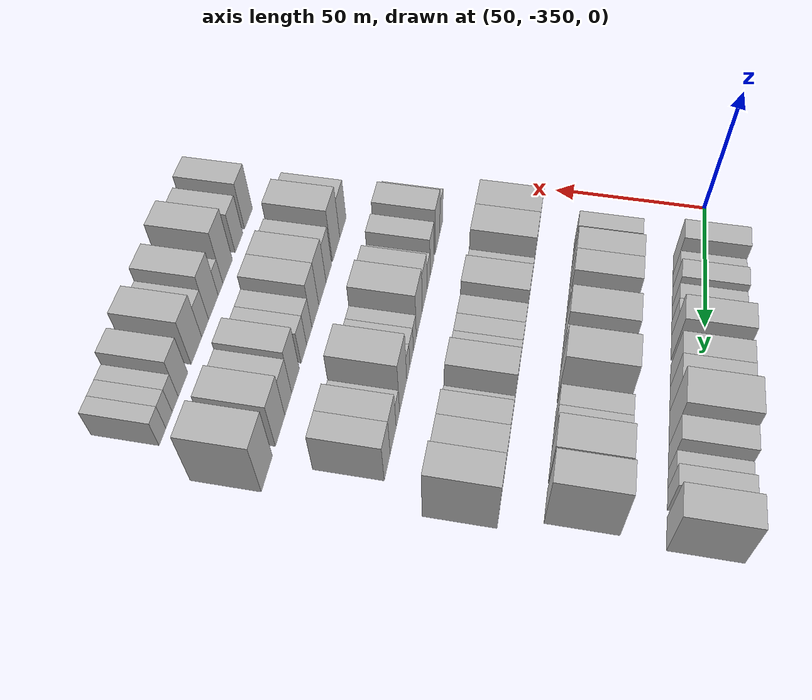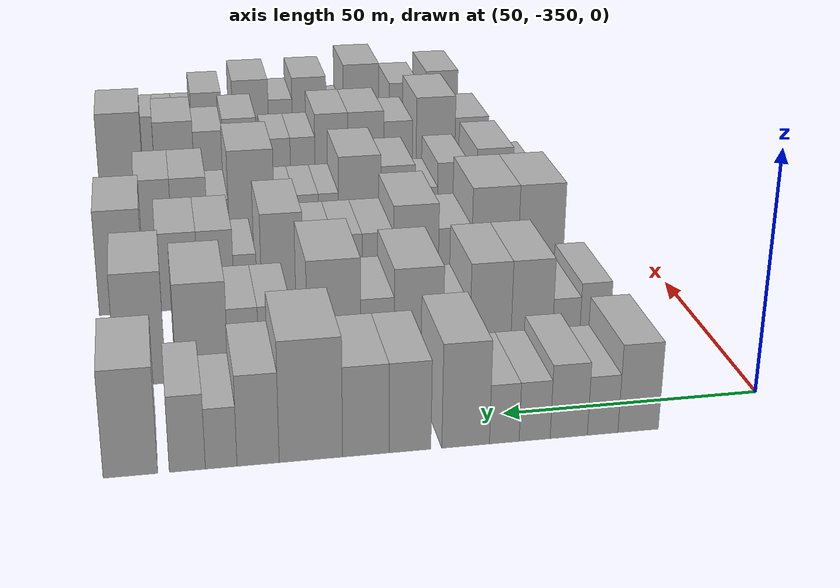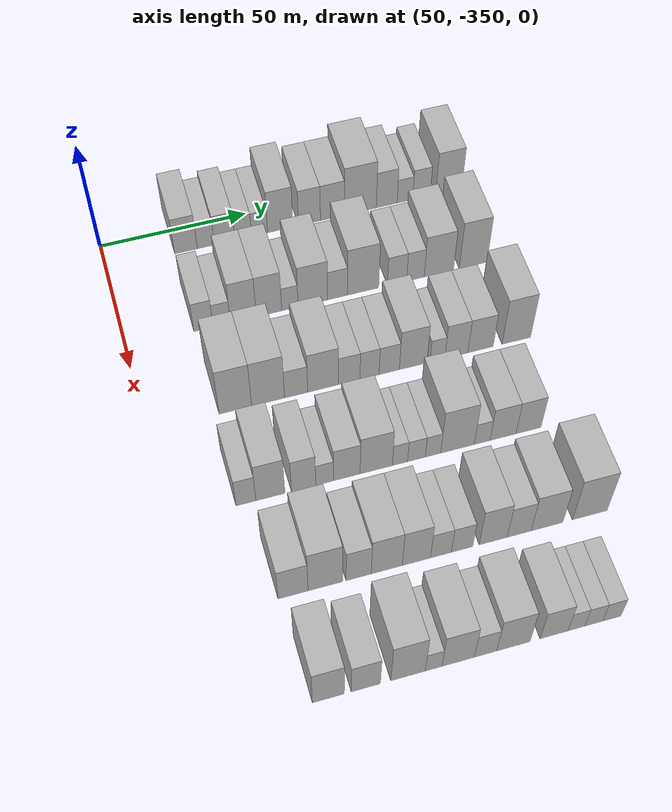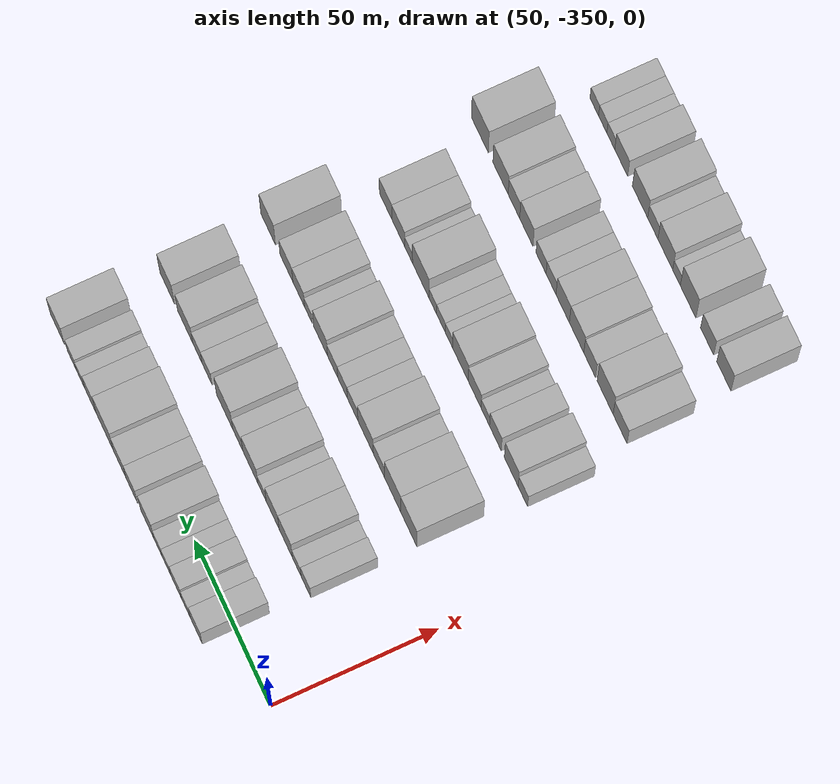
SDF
<sdf version="1.6">
 <world name="default">
  <model name="building_24">
   <static>1</static>
   <pose>50.0000 -322.9932 0 0.000000 0.000000 0.000000</pose>
   <link name="link">
    <pose>0 0 9.00 0 0 0</pose>
    <collision name="collision"><geometry><box><size>20.0000 7.7417 18.0000</size></box></geometry></collision>
    <visual name="visual">
     <cast_shadows>0</cast_shadows>
     <geometry><box><size>20.0000 7.7417 18.0000</size></box></geometry>
     <material>
      <script>
       <uri>model://HANNAS_wall/materials/scripts</uri>
       <uri>model://HANNAS_wall/materials/textures</uri>
       <name>vrc/HANNAS_wall</name>
      </script>
     </material>
    </visual>
   </link>
  </model>
  <model name="building_25">
   <static>1</static>
   <pose>50.0000 -316.2229 0 0.000000 0.000000 0.000000</pose>
   <link name="link">
    <pose>0 0 6.00 0 0 0</pose>
    <collision name="collision"><geometry><box><size>20.0000 5.7988 12.0000</size></box></geometry></collision>
    <visual name="visual">
     <cast_shadows>0</cast_shadows>
     <geometry><box><size>20.0000 5.7988 12.0000</size></box></geometry>
     <material>
      <script>
       <uri>model://HANNAS_wall/materials/scripts</uri>
       <uri>model://HANNAS_wall/materials/textures</uri>
       <name>vrc/HANNAS_wall</name>
      </script>
     </material>
    </visual>
   </link>
  </model>
  <model name="building_26">
   <static>1</static>
   <pose>50.0000 -309.8086 0 0.000000 0.000000 0.000000</pose>
   <link name="link">
    <pose>0 0 7.50 0 0 0</pose>
    <collision name="collision"><geometry><box><size>20.0000 7.0299 15.0000</size></box></geometry></collision>
    <visual name="visual">
     <cast_shadows>0</cast_shadows>
     <geometry><box><size>20.0000 7.0299 15.0000</size></box></geometry>
     <material>
      <script>
       <uri>model://HANNAS_wall/materials/scripts</uri>
       <uri>model://HANNAS_wall/materials/textures</uri>
       <name>vrc/HANNAS_wall</name>
      </script>
     </material>
    </visual>
   </link>
  </model>
  <model name="building_27">
   <static>1</static>
   <pose>50.0000 -303.3903 0 0.000000 0.000000 0.000000</pose>
   <link name="link">
    <pose>0 0 6.00 0 0 0</pose>
    <collision name="collision"><geometry><box><size>20.0000 5.8066 12.0000</size></box></geometry></collision>
    <visual name="visual">
     <cast_shadows>0</cast_shadows>
     <geometry><box><size>20.0000 5.8066 12.0000</size></box></geometry>
     <material>
      <script>
       <uri>model://HANNAS_wall/materials/scripts</uri>
       <uri>model://HANNAS_wall/materials/textures</uri>
       <name>vrc/HANNAS_wall</name>
      </script>
     </material>
    </visual>
   </link>
  </model>
  <model name="building_28">
   <static>1</static>
   <pose>50.0000 -297.7260 0 0.000000 0.000000 0.000000</pose>
   <link name="link">
    <pose>0 0 6.00 0 0 0</pose>
    <collision name="collision"><geometry><box><size>20.0000 5.5220 12.0000</size></box></geometry></collision>
    <visual name="visual">
     <cast_shadows>0</cast_shadows>
     <geometry><box><size>20.0000 5.5220 12.0000</size></box></geometry>
     <material>
      <script>
       <uri>model://HANNAS_wall/materials/scripts</uri>
       <uri>model://HANNAS_wall/materials/textures</uri>
       <name>vrc/HANNAS_wall</name>
      </script>
     </material>
    </visual>
   </link>
  </model>
  <model name="building_29">
   <static>1</static>
   <pose>50.0000 -290.5696 0 0.000000 0.000000 0.000000</pose>
   <link name="link">
    <pose>0 0 10.50 0 0 0</pose>
    <collision name="collision"><geometry><box><size>20.0000 8.7908 21.0000</size></box></geometry></collision>
    <visual name="visual">
     <cast_shadows>0</cast_shadows>
     <geometry><box><size>20.0000 8.7908 21.0000</size></box></geometry>
     <material>
      <script>
       <uri>model://HANNAS_wall/materials/scripts</uri>
       <uri>model://HANNAS_wall/materials/textures</uri>
       <name>vrc/HANNAS_wall</name>
      </script>
     </material>
    </visual>
   </link>
  </model>
  <model name="building_30">
   <static>1</static>
   <pose>50.0000 -280.3609 0 0.000000 0.000000 0.000000</pose>
   <link name="link">
    <pose>0 0 9.00 0 0 0</pose>
    <collision name="collision"><geometry><box><size>20.0000 7.6265 18.0000</size></box></geometry></collision>
    <visual name="visual">
     <cast_shadows>0</cast_shadows>
     <geometry><box><size>20.0000 7.6265 18.0000</size></box></geometry>
     <material>
      <script>
       <uri>model://HANNAS_wall/materials/scripts</uri>
       <uri>model://HANNAS_wall/materials/textures</uri>
       <name>vrc/HANNAS_wall</name>
      </script>
     </material>
    </visual>
   </link>
  </model>
  <model name="building_31">
   <static>1</static>
   <pose>50.0000 -272.3562 0 0.000000 0.000000 0.000000</pose>
   <link name="link">
    <pose>0 0 9.00 0 0 0</pose>
    <collision name="collision"><geometry><box><size>20.0000 8.3829 18.0000</size></box></geometry></collision>
    <visual name="visual">
     <cast_shadows>0</cast_shadows>
     <geometry><box><size>20.0000 8.3829 18.0000</size></box></geometry>
     <material>
      <script>
       <uri>model://HANNAS_wall/materials/scripts</uri>
       <uri>model://HANNAS_wall/materials/textures</uri>
       <name>vrc/HANNAS_wall</name>
      </script>
     </material>
    </visual>
   </link>
  </model>
  <model name="building_32">
   <static>1</static>
   <pose>50.0000 -262.5028 0 0.000000 0.000000 0.000000</pose>
   <link name="link">
    <pose>0 0 12.00 0 0 0</pose>
    <collision name="collision"><geometry><box><size>20.0000 11.3239 24.0000</size></box></geometry></collision>
    <visual name="visual">
     <cast_shadows>0</cast_shadows>
     <geometry><box><size>20.0000 11.3239 24.0000</size></box></geometry>
     <material>
      <script>
       <uri>model://HANNAS_wall/materials/scripts</uri>
       <uri>model://HANNAS_wall/materials/textures</uri>
       <name>vrc/HANNAS_wall</name>
      </script>
     </material>
    </visual>
   </link>
  </model>
  <model name="building_33">
   <static>1</static>
   <pose>50.0000 -253.1167 0 0.000000 0.000000 0.000000</pose>
   <link name="link">
    <pose>0 0 9.00 0 0 0</pose>
    <collision name="collision"><geometry><box><size>20.0000 7.4485 18.0000</size></box></geometry></collision>
    <visual name="visual">
     <cast_shadows>0</cast_shadows>
     <geometry><box><size>20.0000 7.4485 18.0000</size></box></geometry>
     <material>
      <script>
       <uri>model://HANNAS_wall/materials/scripts</uri>
       <uri>model://HANNAS_wall/materials/textures</uri>
       <name>vrc/HANNAS_wall</name>
      </script>
     </material>
    </visual>
   </link>
  </model>
  <model name="building_34">
   <static>1</static>
   <pose>50.0000 -246.6153 0 0.000000 0.000000 0.000000</pose>
   <link name="link">
    <pose>0 0 6.00 0 0 0</pose>
    <collision name="collision"><geometry><box><size>20.0000 5.5543 12.0000</size></box></geometry></collision>
    <visual name="visual">
     <cast_shadows>0</cast_shadows>
     <geometry><box><size>20.0000 5.5543 12.0000</size></box></geometry>
     <material>
      <script>
       <uri>model://HANNAS_wall/materials/scripts</uri>
       <uri>model://HANNAS_wall/materials/textures</uri>
       <name>vrc/HANNAS_wall</name>
      </script>
     </material>
    </visual>
   </link>
  </model>
  <model name="building_35">
   <static>1</static>
   <pose>50.0000 -240.7044 0 0.000000 0.000000 0.000000</pose>
   <link name="link">
    <pose>0 0 7.50 0 0 0</pose>
    <collision name="collision"><geometry><box><size>20.0000 6.2673 15.0000</size></box></geometry></collision>
    <visual name="visual">
     <cast_shadows>0</cast_shadows>
     <geometry><box><size>20.0000 6.2673 15.0000</size></box></geometry>
     <material>
      <script>
       <uri>model://HANNAS_wall/materials/scripts</uri>
       <uri>model://HANNAS_wall/materials/textures</uri>
       <name>vrc/HANNAS_wall</name>
      </script>
     </material>
    </visual>
   </link>
  </model>
  <model name="building_36">
   <static>1</static>
   <pose>50.0000 -230.8726 0 0.000000 0.000000 0.000000</pose>
   <link name="link">
    <pose>0 0 10.50 0 0 0</pose>
    <collision name="collision"><geometry><box><size>20.0000 9.3964 21.0000</size></box></geometry></collision>
    <visual name="visual">
     <cast_shadows>0</cast_shadows>
     <geometry><box><size>20.0000 9.3964 21.0000</size></box></geometry>
     <material>
      <script>
       <uri>model://HANNAS_wall/materials/scripts</uri>
       <uri>model://HANNAS_wall/materials/textures</uri>
       <name>vrc/HANNAS_wall</name>
      </script>
     </material>
    </visual>
   </link>
  </model>
  <model name="building_145">
   <static>1</static>
   <pose>82.0000 -324.4980 0 0.000000 0.000000 0.000000</pose>
   <link name="link">
    <pose>0 0 7.50 0 0 0</pose>
    <collision name="collision"><geometry><box><size>20.0000 6.3324 15.0000</size></box></geometry></collision>
    <visual name="visual">
     <cast_shadows>0</cast_shadows>
     <geometry><box><size>20.0000 6.3324 15.0000</size></box></geometry>
     <material>
      <script>
       <uri>model://HANNAS_wall/materials/scripts</uri>
       <uri>model://HANNAS_wall/materials/textures</uri>
       <name>vrc/HANNAS_wall</name>
      </script>
     </material>
    </visual>
   </link>
  </model>
  <model name="building_146">
   <static>1</static>
   <pose>82.0000 -318.4754 0 0.000000 0.000000 0.000000</pose>
   <link name="link">
    <pose>0 0 6.00 0 0 0</pose>
    <collision name="collision"><geometry><box><size>20.0000 5.7127 12.0000</size></box></geometry></collision>
    <visual name="visual">
     <cast_shadows>0</cast_shadows>
     <geometry><box><size>20.0000 5.7127 12.0000</size></box></geometry>
     <material>
      <script>
       <uri>model://HANNAS_wall/materials/scripts</uri>
       <uri>model://HANNAS_wall/materials/textures</uri>
       <name>vrc/HANNAS_wall</name>
      </script>
     </material>
    </visual>
   </link>
  </model>
  <model name="building_147">
   <static>1</static>
   <pose>82.0000 -311.3048 0 0.000000 0.000000 0.000000</pose>
   <link name="link">
    <pose>0 0 10.50 0 0 0</pose>
    <collision name="collision"><geometry><box><size>20.0000 8.6284 21.0000</size></box></geometry></collision>
    <visual name="visual">
     <cast_shadows>0</cast_shadows>
     <geometry><box><size>20.0000 8.6284 21.0000</size></box></geometry>
     <material>
      <script>
       <uri>model://HANNAS_wall/materials/scripts</uri>
       <uri>model://HANNAS_wall/materials/textures</uri>
       <name>vrc/HANNAS_wall</name>
      </script>
     </material>
    </visual>
   </link>
  </model>
  <model name="building_148">
   <static>1</static>
   <pose>82.0000 -302.7556 0 0.000000 0.000000 0.000000</pose>
   <link name="link">
    <pose>0 0 10.50 0 0 0</pose>
    <collision name="collision"><geometry><box><size>20.0000 8.4700 21.0000</size></box></geometry></collision>
    <visual name="visual">
     <cast_shadows>0</cast_shadows>
     <geometry><box><size>20.0000 8.4700 21.0000</size></box></geometry>
     <material>
      <script>
       <uri>model://HANNAS_wall/materials/scripts</uri>
       <uri>model://HANNAS_wall/materials/textures</uri>
       <name>vrc/HANNAS_wall</name>
      </script>
     </material>
    </visual>
   </link>
  </model>
  <model name="building_149">
   <static>1</static>
   <pose>82.0000 -295.7956 0 0.000000 0.000000 0.000000</pose>
   <link name="link">
    <pose>0 0 6.00 0 0 0</pose>
    <collision name="collision"><geometry><box><size>20.0000 5.4501 12.0000</size></box></geometry></collision>
    <visual name="visual">
     <cast_shadows>0</cast_shadows>
     <geometry><box><size>20.0000 5.4501 12.0000</size></box></geometry>
     <material>
      <script>
       <uri>model://HANNAS_wall/materials/scripts</uri>
       <uri>model://HANNAS_wall/materials/textures</uri>
       <name>vrc/HANNAS_wall</name>
      </script>
     </material>
    </visual>
   </link>
  </model>
  <model name="building_150">
   <static>1</static>
   <pose>82.0000 -288.0998 0 0.000000 0.000000 0.000000</pose>
   <link name="link">
    <pose>0 0 10.50 0 0 0</pose>
    <collision name="collision"><geometry><box><size>20.0000 9.9416 21.0000</size></box></geometry></collision>
    <visual name="visual">
     <cast_shadows>0</cast_shadows>
     <geometry><box><size>20.0000 9.9416 21.0000</size></box></geometry>
     <material>
      <script>
       <uri>model://HANNAS_wall/materials/scripts</uri>
       <uri>model://HANNAS_wall/materials/textures</uri>
       <name>vrc/HANNAS_wall</name>
      </script>
     </material>
    </visual>
   </link>
  </model>
  <model name="building_151">
   <static>1</static>
   <pose>82.0000 -279.7803 0 0.000000 0.000000 0.000000</pose>
   <link name="link">
    <pose>0 0 7.50 0 0 0</pose>
    <collision name="collision"><geometry><box><size>20.0000 6.6973 15.0000</size></box></geometry></collision>
    <visual name="visual">
     <cast_shadows>0</cast_shadows>
     <geometry><box><size>20.0000 6.6973 15.0000</size></box></geometry>
     <material>
      <script>
       <uri>model://HANNAS_wall/materials/scripts</uri>
       <uri>model://HANNAS_wall/materials/textures</uri>
       <name>vrc/HANNAS_wall</name>
      </script>
     </material>
    </visual>
   </link>
  </model>
  <model name="building_152">
   <static>1</static>
   <pose>82.0000 -271.0943 0 0.000000 0.000000 0.000000</pose>
   <link name="link">
    <pose>0 0 12.00 0 0 0</pose>
    <collision name="collision"><geometry><box><size>20.0000 10.6749 24.0000</size></box></geometry></collision>
    <visual name="visual">
     <cast_shadows>0</cast_shadows>
     <geometry><box><size>20.0000 10.6749 24.0000</size></box></geometry>
     <material>
      <script>
       <uri>model://HANNAS_wall/materials/scripts</uri>
       <uri>model://HANNAS_wall/materials/textures</uri>
       <name>vrc/HANNAS_wall</name>
      </script>
     </material>
    </visual>
   </link>
  </model>
  <model name="building_153">
   <static>1</static>
   <pose>82.0000 -259.4603 0 0.000000 0.000000 0.000000</pose>
   <link name="link">
    <pose>0 0 7.50 0 0 0</pose>
    <collision name="collision"><geometry><box><size>20.0000 6.5931 15.0000</size></box></geometry></collision>
    <visual name="visual">
     <cast_shadows>0</cast_shadows>
     <geometry><box><size>20.0000 6.5931 15.0000</size></box></geometry>
     <material>
      <script>
       <uri>model://HANNAS_wall/materials/scripts</uri>
       <uri>model://HANNAS_wall/materials/textures</uri>
       <name>vrc/HANNAS_wall</name>
      </script>
     </material>
    </visual>
   </link>
  </model>
  <model name="building_154">
   <static>1</static>
   <pose>82.0000 -253.1320 0 0.000000 0.000000 0.000000</pose>
   <link name="link">
    <pose>0 0 7.50 0 0 0</pose>
    <collision name="collision"><geometry><box><size>20.0000 6.0636 15.0000</size></box></geometry></collision>
    <visual name="visual">
     <cast_shadows>0</cast_shadows>
     <geometry><box><size>20.0000 6.0636 15.0000</size></box></geometry>
     <material>
      <script>
       <uri>model://HANNAS_wall/materials/scripts</uri>
       <uri>model://HANNAS_wall/materials/textures</uri>
       <name>vrc/HANNAS_wall</name>
      </script>
     </material>
    </visual>
   </link>
  </model>
  <model name="building_155">
   <static>1</static>
   <pose>82.0000 -245.0280 0 0.000000 0.000000 0.000000</pose>
   <link name="link">
    <pose>0 0 10.50 0 0 0</pose>
    <collision name="collision"><geometry><box><size>20.0000 10.1445 21.0000</size></box></geometry></collision>
    <visual name="visual">
     <cast_shadows>0</cast_shadows>
     <geometry><box><size>20.0000 10.1445 21.0000</size></box></geometry>
     <material>
      <script>
       <uri>model://HANNAS_wall/materials/scripts</uri>
       <uri>model://HANNAS_wall/materials/textures</uri>
       <name>vrc/HANNAS_wall</name>
      </script>
     </material>
    </visual>
   </link>
  </model>
  <model name="building_156">
   <static>1</static>
   <pose>82.0000 -233.1219 0 0.000000 0.000000 0.000000</pose>
   <link name="link">
    <pose>0 0 12.00 0 0 0</pose>
    <collision name="collision"><geometry><box><size>20.0000 9.6677 24.0000</size></box></geometry></collision>
    <visual name="visual">
     <cast_shadows>0</cast_shadows>
     <geometry><box><size>20.0000 9.6677 24.0000</size></box></geometry>
     <material>
      <script>
       <uri>model://HANNAS_wall/materials/scripts</uri>
       <uri>model://HANNAS_wall/materials/textures</uri>
       <name>vrc/HANNAS_wall</name>
      </script>
     </material>
    </visual>
   </link>
  </model>
  <model name="building_269">
   <static>1</static>
   <pose>114.0000 -321.8526 0 0.000000 0.000000 0.000000</pose>
   <link name="link">
    <pose>0 0 12.00 0 0 0</pose>
    <collision name="collision"><geometry><box><size>20.0000 10.3805 24.0000</size></box></geometry></collision>
    <visual name="visual">
     <cast_shadows>0</cast_shadows>
     <geometry><box><size>20.0000 10.3805 24.0000</size></box></geometry>
     <material>
      <script>
       <uri>model://HANNAS_wall/materials/scripts</uri>
       <uri>model://HANNAS_wall/materials/textures</uri>
       <name>vrc/HANNAS_wall</name>
      </script>
     </material>
    </visual>
   </link>
  </model>
  <model name="building_270">
   <static>1</static>
   <pose>114.0000 -311.3780 0 0.000000 0.000000 0.000000</pose>
   <link name="link">
    <pose>0 0 12.00 0 0 0</pose>
    <collision name="collision"><geometry><box><size>20.0000 10.5687 24.0000</size></box></geometry></collision>
    <visual name="visual">
     <cast_shadows>0</cast_shadows>
     <geometry><box><size>20.0000 10.5687 24.0000</size></box></geometry>
     <material>
      <script>
       <uri>model://HANNAS_wall/materials/scripts</uri>
       <uri>model://HANNAS_wall/materials/textures</uri>
       <name>vrc/HANNAS_wall</name>
      </script>
     </material>
    </visual>
   </link>
  </model>
  <model name="building_271">
   <static>1</static>
   <pose>114.0000 -302.3711 0 0.000000 0.000000 0.000000</pose>
   <link name="link">
    <pose>0 0 7.50 0 0 0</pose>
    <collision name="collision"><geometry><box><size>20.0000 7.4452 15.0000</size></box></geometry></collision>
    <visual name="visual">
     <cast_shadows>0</cast_shadows>
     <geometry><box><size>20.0000 7.4452 15.0000</size></box></geometry>
     <material>
      <script>
       <uri>model://HANNAS_wall/materials/scripts</uri>
       <uri>model://HANNAS_wall/materials/textures</uri>
       <name>vrc/HANNAS_wall</name>
      </script>
     </material>
    </visual>
   </link>
  </model>
  <model name="building_272">
   <static>1</static>
   <pose>114.0000 -293.6309 0 0.000000 0.000000 0.000000</pose>
   <link name="link">
    <pose>0 0 10.50 0 0 0</pose>
    <collision name="collision"><geometry><box><size>20.0000 10.0352 21.0000</size></box></geometry></collision>
    <visual name="visual">
     <cast_shadows>0</cast_shadows>
     <geometry><box><size>20.0000 10.0352 21.0000</size></box></geometry>
     <material>
      <script>
       <uri>model://HANNAS_wall/materials/scripts</uri>
       <uri>model://HANNAS_wall/materials/textures</uri>
       <name>vrc/HANNAS_wall</name>
      </script>
     </material>
    </visual>
   </link>
  </model>
  <model name="building_273">
   <static>1</static>
   <pose>114.0000 -285.1408 0 0.000000 0.000000 0.000000</pose>
   <link name="link">
    <pose>0 0 7.50 0 0 0</pose>
    <collision name="collision"><geometry><box><size>20.0000 6.9450 15.0000</size></box></geometry></collision>
    <visual name="visual">
     <cast_shadows>0</cast_shadows>
     <geometry><box><size>20.0000 6.9450 15.0000</size></box></geometry>
     <material>
      <script>
       <uri>model://HANNAS_wall/materials/scripts</uri>
       <uri>model://HANNAS_wall/materials/textures</uri>
       <name>vrc/HANNAS_wall</name>
      </script>
     </material>
    </visual>
   </link>
  </model>
  <model name="building_274">
   <static>1</static>
   <pose>114.0000 -278.5317 0 0.000000 0.000000 0.000000</pose>
   <link name="link">
    <pose>0 0 7.50 0 0 0</pose>
    <collision name="collision"><geometry><box><size>20.0000 6.2732 15.0000</size></box></geometry></collision>
    <visual name="visual">
     <cast_shadows>0</cast_shadows>
     <geometry><box><size>20.0000 6.2732 15.0000</size></box></geometry>
     <material>
      <script>
       <uri>model://HANNAS_wall/materials/scripts</uri>
       <uri>model://HANNAS_wall/materials/textures</uri>
       <name>vrc/HANNAS_wall</name>
      </script>
     </material>
    </visual>
   </link>
  </model>
  <model name="building_275">
   <static>1</static>
   <pose>114.0000 -272.0496 0 0.000000 0.000000 0.000000</pose>
   <link name="link">
    <pose>0 0 7.50 0 0 0</pose>
    <collision name="collision"><geometry><box><size>20.0000 6.6910 15.0000</size></box></geometry></collision>
    <visual name="visual">
     <cast_shadows>0</cast_shadows>
     <geometry><box><size>20.0000 6.6910 15.0000</size></box></geometry>
     <material>
      <script>
       <uri>model://HANNAS_wall/materials/scripts</uri>
       <uri>model://HANNAS_wall/materials/textures</uri>
       <name>vrc/HANNAS_wall</name>
      </script>
     </material>
    </visual>
   </link>
  </model>
  <model name="building_276">
   <static>1</static>
   <pose>114.0000 -264.1493 0 0.000000 0.000000 0.000000</pose>
   <link name="link">
    <pose>0 0 10.50 0 0 0</pose>
    <collision name="collision"><geometry><box><size>20.0000 9.1096 21.0000</size></box></geometry></collision>
    <visual name="visual">
     <cast_shadows>0</cast_shadows>
     <geometry><box><size>20.0000 9.1096 21.0000</size></box></geometry>
     <material>
      <script>
       <uri>model://HANNAS_wall/materials/scripts</uri>
       <uri>model://HANNAS_wall/materials/textures</uri>
       <name>vrc/HANNAS_wall</name>
      </script>
     </material>
    </visual>
   </link>
  </model>
  <model name="building_277">
   <static>1</static>
   <pose>114.0000 -256.1129 0 0.000000 0.000000 0.000000</pose>
   <link name="link">
    <pose>0 0 6.00 0 0 0</pose>
    <collision name="collision"><geometry><box><size>20.0000 4.9632 12.0000</size></box></geometry></collision>
    <visual name="visual">
     <cast_shadows>0</cast_shadows>
     <geometry><box><size>20.0000 4.9632 12.0000</size></box></geometry>
     <material>
      <script>
       <uri>model://HANNAS_wall/materials/scripts</uri>
       <uri>model://HANNAS_wall/materials/textures</uri>
       <name>vrc/HANNAS_wall</name>
      </script>
     </material>
    </visual>
   </link>
  </model>
  <model name="building_278">
   <static>1</static>
   <pose>114.0000 -249.7897 0 0.000000 0.000000 0.000000</pose>
   <link name="link">
    <pose>0 0 9.00 0 0 0</pose>
    <collision name="collision"><geometry><box><size>20.0000 7.6833 18.0000</size></box></geometry></collision>
    <visual name="visual">
     <cast_shadows>0</cast_shadows>
     <geometry><box><size>20.0000 7.6833 18.0000</size></box></geometry>
     <material>
      <script>
       <uri>model://HANNAS_wall/materials/scripts</uri>
       <uri>model://HANNAS_wall/materials/textures</uri>
       <name>vrc/HANNAS_wall</name>
      </script>
     </material>
    </visual>
   </link>
  </model>
  <model name="building_279">
   <static>1</static>
   <pose>114.0000 -241.6819 0 0.000000 0.000000 0.000000</pose>
   <link name="link">
    <pose>0 0 9.00 0 0 0</pose>
    <collision name="collision"><geometry><box><size>20.0000 8.5323 18.0000</size></box></geometry></collision>
    <visual name="visual">
     <cast_shadows>0</cast_shadows>
     <geometry><box><size>20.0000 8.5323 18.0000</size></box></geometry>
     <material>
      <script>
       <uri>model://HANNAS_wall/materials/scripts</uri>
       <uri>model://HANNAS_wall/materials/textures</uri>
       <name>vrc/HANNAS_wall</name>
      </script>
     </material>
    </visual>
   </link>
  </model>
  <model name="building_280">
   <static>1</static>
   <pose>114.0000 -229.5955 0 0.000000 0.000000 0.000000</pose>
   <link name="link">
    <pose>0 0 12.00 0 0 0</pose>
    <collision name="collision"><geometry><box><size>20.0000 9.6406 24.0000</size></box></geometry></collision>
    <visual name="visual">
     <cast_shadows>0</cast_shadows>
     <geometry><box><size>20.0000 9.6406 24.0000</size></box></geometry>
     <material>
      <script>
       <uri>model://HANNAS_wall/materials/scripts</uri>
       <uri>model://HANNAS_wall/materials/textures</uri>
       <name>vrc/HANNAS_wall</name>
      </script>
     </material>
    </visual>
   </link>
  </model>
  <model name="building_388">
   <static>1</static>
   <pose>146.0000 -326.5273 0 0.000000 0.000000 0.000000</pose>
   <link name="link">
    <pose>0 0 7.50 0 0 0</pose>
    <collision name="collision"><geometry><box><size>20.0000 6.0870 15.0000</size></box></geometry></collision>
    <visual name="visual">
     <cast_shadows>0</cast_shadows>
     <geometry><box><size>20.0000 6.0870 15.0000</size></box></geometry>
     <material>
      <script>
       <uri>model://HANNAS_wall/materials/scripts</uri>
       <uri>model://HANNAS_wall/materials/textures</uri>
       <name>vrc/HANNAS_wall</name>
      </script>
     </material>
    </visual>
   </link>
  </model>
  <model name="building_389">
   <static>1</static>
   <pose>146.0000 -319.0149 0 0.000000 0.000000 0.000000</pose>
   <link name="link">
    <pose>0 0 10.50 0 0 0</pose>
    <collision name="collision"><geometry><box><size>20.0000 8.9378 21.0000</size></box></geometry></collision>
    <visual name="visual">
     <cast_shadows>0</cast_shadows>
     <geometry><box><size>20.0000 8.9378 21.0000</size></box></geometry>
     <material>
      <script>
       <uri>model://HANNAS_wall/materials/scripts</uri>
       <uri>model://HANNAS_wall/materials/textures</uri>
       <name>vrc/HANNAS_wall</name>
      </script>
     </material>
    </visual>
   </link>
  </model>
  <model name="building_390">
   <static>1</static>
   <pose>146.0000 -308.7647 0 0.000000 0.000000 0.000000</pose>
   <link name="link">
    <pose>0 0 9.00 0 0 0</pose>
    <collision name="collision"><geometry><box><size>20.0000 7.5625 18.0000</size></box></geometry></collision>
    <visual name="visual">
     <cast_shadows>0</cast_shadows>
     <geometry><box><size>20.0000 7.5625 18.0000</size></box></geometry>
     <material>
      <script>
       <uri>model://HANNAS_wall/materials/scripts</uri>
       <uri>model://HANNAS_wall/materials/textures</uri>
       <name>vrc/HANNAS_wall</name>
      </script>
     </material>
    </visual>
   </link>
  </model>
  <model name="building_391">
   <static>1</static>
   <pose>146.0000 -302.2310 0 0.000000 0.000000 0.000000</pose>
   <link name="link">
    <pose>0 0 6.00 0 0 0</pose>
    <collision name="collision"><geometry><box><size>20.0000 5.5048 12.0000</size></box></geometry></collision>
    <visual name="visual">
     <cast_shadows>0</cast_shadows>
     <geometry><box><size>20.0000 5.5048 12.0000</size></box></geometry>
     <material>
      <script>
       <uri>model://HANNAS_wall/materials/scripts</uri>
       <uri>model://HANNAS_wall/materials/textures</uri>
       <name>vrc/HANNAS_wall</name>
      </script>
     </material>
    </visual>
   </link>
  </model>
  <model name="building_392">
   <static>1</static>
   <pose>146.0000 -295.3212 0 0.000000 0.000000 0.000000</pose>
   <link name="link">
    <pose>0 0 9.00 0 0 0</pose>
    <collision name="collision"><geometry><box><size>20.0000 8.3147 18.0000</size></box></geometry></collision>
    <visual name="visual">
     <cast_shadows>0</cast_shadows>
     <geometry><box><size>20.0000 8.3147 18.0000</size></box></geometry>
     <material>
      <script>
       <uri>model://HANNAS_wall/materials/scripts</uri>
       <uri>model://HANNAS_wall/materials/textures</uri>
       <name>vrc/HANNAS_wall</name>
      </script>
     </material>
    </visual>
   </link>
  </model>
  <model name="building_393">
   <static>1</static>
   <pose>146.0000 -286.0774 0 0.000000 0.000000 0.000000</pose>
   <link name="link">
    <pose>0 0 10.50 0 0 0</pose>
    <collision name="collision"><geometry><box><size>20.0000 10.1730 21.0000</size></box></geometry></collision>
    <visual name="visual">
     <cast_shadows>0</cast_shadows>
     <geometry><box><size>20.0000 10.1730 21.0000</size></box></geometry>
     <material>
      <script>
       <uri>model://HANNAS_wall/materials/scripts</uri>
       <uri>model://HANNAS_wall/materials/textures</uri>
       <name>vrc/HANNAS_wall</name>
      </script>
     </material>
    </visual>
   </link>
  </model>
  <model name="building_394">
   <static>1</static>
   <pose>146.0000 -278.5793 0 0.000000 0.000000 0.000000</pose>
   <link name="link">
    <pose>0 0 6.00 0 0 0</pose>
    <collision name="collision"><geometry><box><size>20.0000 4.8231 12.0000</size></box></geometry></collision>
    <visual name="visual">
     <cast_shadows>0</cast_shadows>
     <geometry><box><size>20.0000 4.8231 12.0000</size></box></geometry>
     <material>
      <script>
       <uri>model://HANNAS_wall/materials/scripts</uri>
       <uri>model://HANNAS_wall/materials/textures</uri>
       <name>vrc/HANNAS_wall</name>
      </script>
     </material>
    </visual>
   </link>
  </model>
  <model name="building_395">
   <static>1</static>
   <pose>146.0000 -273.3423 0 0.000000 0.000000 0.000000</pose>
   <link name="link">
    <pose>0 0 6.00 0 0 0</pose>
    <collision name="collision"><geometry><box><size>20.0000 5.6510 12.0000</size></box></geometry></collision>
    <visual name="visual">
     <cast_shadows>0</cast_shadows>
     <geometry><box><size>20.0000 5.6510 12.0000</size></box></geometry>
     <material>
      <script>
       <uri>model://HANNAS_wall/materials/scripts</uri>
       <uri>model://HANNAS_wall/materials/textures</uri>
       <name>vrc/HANNAS_wall</name>
      </script>
     </material>
    </visual>
   </link>
  </model>
  <model name="building_396">
   <static>1</static>
   <pose>146.0000 -268.0725 0 0.000000 0.000000 0.000000</pose>
   <link name="link">
    <pose>0 0 6.00 0 0 0</pose>
    <collision name="collision"><geometry><box><size>20.0000 4.8886 12.0000</size></box></geometry></collision>
    <visual name="visual">
     <cast_shadows>0</cast_shadows>
     <geometry><box><size>20.0000 4.8886 12.0000</size></box></geometry>
     <material>
      <script>
       <uri>model://HANNAS_wall/materials/scripts</uri>
       <uri>model://HANNAS_wall/materials/textures</uri>
       <name>vrc/HANNAS_wall</name>
      </script>
     </material>
    </visual>
   </link>
  </model>
  <model name="building_397">
   <static>1</static>
   <pose>146.0000 -260.2406 0 0.000000 0.000000 0.000000</pose>
   <link name="link">
    <pose>0 0 12.00 0 0 0</pose>
    <collision name="collision"><geometry><box><size>20.0000 10.7751 24.0000</size></box></geometry></collision>
    <visual name="visual">
     <cast_shadows>0</cast_shadows>
     <geometry><box><size>20.0000 10.7751 24.0000</size></box></geometry>
     <material>
      <script>
       <uri>model://HANNAS_wall/materials/scripts</uri>
       <uri>model://HANNAS_wall/materials/textures</uri>
       <name>vrc/HANNAS_wall</name>
      </script>
     </material>
    </visual>
   </link>
  </model>
  <model name="building_398">
   <static>1</static>
   <pose>146.0000 -252.3107 0 0.000000 0.000000 0.000000</pose>
   <link name="link">
    <pose>0 0 6.00 0 0 0</pose>
    <collision name="collision"><geometry><box><size>20.0000 5.0847 12.0000</size></box></geometry></collision>
    <visual name="visual">
     <cast_shadows>0</cast_shadows>
     <geometry><box><size>20.0000 5.0847 12.0000</size></box></geometry>
     <material>
      <script>
       <uri>model://HANNAS_wall/materials/scripts</uri>
       <uri>model://HANNAS_wall/materials/textures</uri>
       <name>vrc/HANNAS_wall</name>
      </script>
     </material>
    </visual>
   </link>
  </model>
  <model name="building_399">
   <static>1</static>
   <pose>146.0000 -245.5551 0 0.000000 0.000000 0.000000</pose>
   <link name="link">
    <pose>0 0 9.00 0 0 0</pose>
    <collision name="collision"><geometry><box><size>20.0000 8.4265 18.0000</size></box></geometry></collision>
    <visual name="visual">
     <cast_shadows>0</cast_shadows>
     <geometry><box><size>20.0000 8.4265 18.0000</size></box></geometry>
     <material>
      <script>
       <uri>model://HANNAS_wall/materials/scripts</uri>
       <uri>model://HANNAS_wall/materials/textures</uri>
       <name>vrc/HANNAS_wall</name>
      </script>
     </material>
    </visual>
   </link>
  </model>
  <model name="building_400">
   <static>1</static>
   <pose>146.0000 -237.2576 0 0.000000 0.000000 0.000000</pose>
   <link name="link">
    <pose>0 0 9.00 0 0 0</pose>
    <collision name="collision"><geometry><box><size>20.0000 8.1686 18.0000</size></box></geometry></collision>
    <visual name="visual">
     <cast_shadows>0</cast_shadows>
     <geometry><box><size>20.0000 8.1686 18.0000</size></box></geometry>
     <material>
      <script>
       <uri>model://HANNAS_wall/materials/scripts</uri>
       <uri>model://HANNAS_wall/materials/textures</uri>
       <name>vrc/HANNAS_wall</name>
      </script>
     </material>
    </visual>
   </link>
  </model>
  <model name="building_508">
   <static>1</static>
   <pose>178.0000 -320.6567 0 0.000000 0.000000 0.000000</pose>
   <link name="link">
    <pose>0 0 9.00 0 0 0</pose>
    <collision name="collision"><geometry><box><size>20.0000 8.9297 18.0000</size></box></geometry></collision>
    <visual name="visual">
     <cast_shadows>0</cast_shadows>
     <geometry><box><size>20.0000 8.9297 18.0000</size></box></geometry>
     <material>
      <script>
       <uri>model://HANNAS_wall/materials/scripts</uri>
       <uri>model://HANNAS_wall/materials/textures</uri>
       <name>vrc/HANNAS_wall</name>
      </script>
     </material>
    </visual>
   </link>
  </model>
  <model name="building_509">
   <static>1</static>
   <pose>178.0000 -311.0441 0 0.000000 0.000000 0.000000</pose>
   <link name="link">
    <pose>0 0 12.00 0 0 0</pose>
    <collision name="collision"><geometry><box><size>20.0000 10.2956 24.0000</size></box></geometry></collision>
    <visual name="visual">
     <cast_shadows>0</cast_shadows>
     <geometry><box><size>20.0000 10.2956 24.0000</size></box></geometry>
     <material>
      <script>
       <uri>model://HANNAS_wall/materials/scripts</uri>
       <uri>model://HANNAS_wall/materials/textures</uri>
       <name>vrc/HANNAS_wall</name>
      </script>
     </material>
    </visual>
   </link>
  </model>
  <model name="building_510">
   <static>1</static>
   <pose>178.0000 -301.1022 0 0.000000 0.000000 0.000000</pose>
   <link name="link">
    <pose>0 0 9.00 0 0 0</pose>
    <collision name="collision"><geometry><box><size>20.0000 7.5882 18.0000</size></box></geometry></collision>
    <visual name="visual">
     <cast_shadows>0</cast_shadows>
     <geometry><box><size>20.0000 7.5882 18.0000</size></box></geometry>
     <material>
      <script>
       <uri>model://HANNAS_wall/materials/scripts</uri>
       <uri>model://HANNAS_wall/materials/textures</uri>
       <name>vrc/HANNAS_wall</name>
      </script>
     </material>
    </visual>
   </link>
  </model>
  <model name="building_511">
   <static>1</static>
   <pose>178.0000 -292.6310 0 0.000000 0.000000 0.000000</pose>
   <link name="link">
    <pose>0 0 10.50 0 0 0</pose>
    <collision name="collision"><geometry><box><size>20.0000 9.3542 21.0000</size></box></geometry></collision>
    <visual name="visual">
     <cast_shadows>0</cast_shadows>
     <geometry><box><size>20.0000 9.3542 21.0000</size></box></geometry>
     <material>
      <script>
       <uri>model://HANNAS_wall/materials/scripts</uri>
       <uri>model://HANNAS_wall/materials/textures</uri>
       <name>vrc/HANNAS_wall</name>
      </script>
     </material>
    </visual>
   </link>
  </model>
  <model name="building_512">
   <static>1</static>
   <pose>178.0000 -283.6479 0 0.000000 0.000000 0.000000</pose>
   <link name="link">
    <pose>0 0 10.50 0 0 0</pose>
    <collision name="collision"><geometry><box><size>20.0000 8.6119 21.0000</size></box></geometry></collision>
    <visual name="visual">
     <cast_shadows>0</cast_shadows>
     <geometry><box><size>20.0000 8.6119 21.0000</size></box></geometry>
     <material>
      <script>
       <uri>model://HANNAS_wall/materials/scripts</uri>
       <uri>model://HANNAS_wall/materials/textures</uri>
       <name>vrc/HANNAS_wall</name>
      </script>
     </material>
    </visual>
   </link>
  </model>
  <model name="building_513">
   <static>1</static>
   <pose>178.0000 -276.1421 0 0.000000 0.000000 0.000000</pose>
   <link name="link">
    <pose>0 0 7.50 0 0 0</pose>
    <collision name="collision"><geometry><box><size>20.0000 6.3997 15.0000</size></box></geometry></collision>
    <visual name="visual">
     <cast_shadows>0</cast_shadows>
     <geometry><box><size>20.0000 6.3997 15.0000</size></box></geometry>
     <material>
      <script>
       <uri>model://HANNAS_wall/materials/scripts</uri>
       <uri>model://HANNAS_wall/materials/textures</uri>
       <name>vrc/HANNAS_wall</name>
      </script>
     </material>
    </visual>
   </link>
  </model>
  <model name="building_514">
   <static>1</static>
   <pose>178.0000 -269.6664 0 0.000000 0.000000 0.000000</pose>
   <link name="link">
    <pose>0 0 7.50 0 0 0</pose>
    <collision name="collision"><geometry><box><size>20.0000 6.5516 15.0000</size></box></geometry></collision>
    <visual name="visual">
     <cast_shadows>0</cast_shadows>
     <geometry><box><size>20.0000 6.5516 15.0000</size></box></geometry>
     <material>
      <script>
       <uri>model://HANNAS_wall/materials/scripts</uri>
       <uri>model://HANNAS_wall/materials/textures</uri>
       <name>vrc/HANNAS_wall</name>
      </script>
     </material>
    </visual>
   </link>
  </model>
  <model name="building_515">
   <static>1</static>
   <pose>178.0000 -260.0725 0 0.000000 0.000000 0.000000</pose>
   <link name="link">
    <pose>0 0 10.50 0 0 0</pose>
    <collision name="collision"><geometry><box><size>20.0000 8.6363 21.0000</size></box></geometry></collision>
    <visual name="visual">
     <cast_shadows>0</cast_shadows>
     <geometry><box><size>20.0000 8.6363 21.0000</size></box></geometry>
     <material>
      <script>
       <uri>model://HANNAS_wall/materials/scripts</uri>
       <uri>model://HANNAS_wall/materials/textures</uri>
       <name>vrc/HANNAS_wall</name>
      </script>
     </material>
    </visual>
   </link>
  </model>
  <model name="building_516">
   <static>1</static>
   <pose>178.0000 -252.0144 0 0.000000 0.000000 0.000000</pose>
   <link name="link">
    <pose>0 0 9.00 0 0 0</pose>
    <collision name="collision"><geometry><box><size>20.0000 7.4799 18.0000</size></box></geometry></collision>
    <visual name="visual">
     <cast_shadows>0</cast_shadows>
     <geometry><box><size>20.0000 7.4799 18.0000</size></box></geometry>
     <material>
      <script>
       <uri>model://HANNAS_wall/materials/scripts</uri>
       <uri>model://HANNAS_wall/materials/textures</uri>
       <name>vrc/HANNAS_wall</name>
      </script>
     </material>
    </visual>
   </link>
  </model>
  <model name="building_517">
   <static>1</static>
   <pose>178.0000 -243.2911 0 0.000000 0.000000 0.000000</pose>
   <link name="link">
    <pose>0 0 10.50 0 0 0</pose>
    <collision name="collision"><geometry><box><size>20.0000 9.9667 21.0000</size></box></geometry></collision>
    <visual name="visual">
     <cast_shadows>0</cast_shadows>
     <geometry><box><size>20.0000 9.9667 21.0000</size></box></geometry>
     <material>
      <script>
       <uri>model://HANNAS_wall/materials/scripts</uri>
       <uri>model://HANNAS_wall/materials/textures</uri>
       <name>vrc/HANNAS_wall</name>
      </script>
     </material>
    </visual>
   </link>
  </model>
  <model name="building_518">
   <static>1</static>
   <pose>178.0000 -229.8120 0 0.000000 0.000000 0.000000</pose>
   <link name="link">
    <pose>0 0 12.00 0 0 0</pose>
    <collision name="collision"><geometry><box><size>20.0000 10.9916 24.0000</size></box></geometry></collision>
    <visual name="visual">
     <cast_shadows>0</cast_shadows>
     <geometry><box><size>20.0000 10.9916 24.0000</size></box></geometry>
     <material>
      <script>
       <uri>model://HANNAS_wall/materials/scripts</uri>
       <uri>model://HANNAS_wall/materials/textures</uri>
       <name>vrc/HANNAS_wall</name>
      </script>
     </material>
    </visual>
   </link>
  </model>
  <model name="building_621">
   <static>1</static>
   <pose>210.0000 -319.2858 0 0.000000 0.000000 0.000000</pose>
   <link name="link">
    <pose>0 0 10.50 0 0 0</pose>
    <collision name="collision"><geometry><box><size>20.0000 9.1011 21.0000</size></box></geometry></collision>
    <visual name="visual">
     <cast_shadows>0</cast_shadows>
     <geometry><box><size>20.0000 9.1011 21.0000</size></box></geometry>
     <material>
      <script>
       <uri>model://HANNAS_wall/materials/scripts</uri>
       <uri>model://HANNAS_wall/materials/textures</uri>
       <name>vrc/HANNAS_wall</name>
      </script>
     </material>
    </visual>
   </link>
  </model>
  <model name="building_622">
   <static>1</static>
   <pose>210.0000 -308.5456 0 0.000000 0.000000 0.000000</pose>
   <link name="link">
    <pose>0 0 9.00 0 0 0</pose>
    <collision name="collision"><geometry><box><size>20.0000 8.3792 18.0000</size></box></geometry></collision>
    <visual name="visual">
     <cast_shadows>0</cast_shadows>
     <geometry><box><size>20.0000 8.3792 18.0000</size></box></geometry>
     <material>
      <script>
       <uri>model://HANNAS_wall/materials/scripts</uri>
       <uri>model://HANNAS_wall/materials/textures</uri>
       <name>vrc/HANNAS_wall</name>
      </script>
     </material>
    </visual>
   </link>
  </model>
  <model name="building_623">
   <static>1</static>
   <pose>210.0000 -296.3543 0 0.000000 0.000000 0.000000</pose>
   <link name="link">
    <pose>0 0 12.00 0 0 0</pose>
    <collision name="collision"><geometry><box><size>20.0000 10.0033 24.0000</size></box></geometry></collision>
    <visual name="visual">
     <cast_shadows>0</cast_shadows>
     <geometry><box><size>20.0000 10.0033 24.0000</size></box></geometry>
     <material>
      <script>
       <uri>model://HANNAS_wall/materials/scripts</uri>
       <uri>model://HANNAS_wall/materials/textures</uri>
       <name>vrc/HANNAS_wall</name>
      </script>
     </material>
    </visual>
   </link>
  </model>
  <model name="building_624">
   <static>1</static>
   <pose>210.0000 -288.9158 0 0.000000 0.000000 0.000000</pose>
   <link name="link">
    <pose>0 0 6.00 0 0 0</pose>
    <collision name="collision"><geometry><box><size>20.0000 4.8738 12.0000</size></box></geometry></collision>
    <visual name="visual">
     <cast_shadows>0</cast_shadows>
     <geometry><box><size>20.0000 4.8738 12.0000</size></box></geometry>
     <material>
      <script>
       <uri>model://HANNAS_wall/materials/scripts</uri>
       <uri>model://HANNAS_wall/materials/textures</uri>
       <name>vrc/HANNAS_wall</name>
      </script>
     </material>
    </visual>
   </link>
  </model>
  <model name="building_625">
   <static>1</static>
   <pose>210.0000 -281.7232 0 0.000000 0.000000 0.000000</pose>
   <link name="link">
    <pose>0 0 10.50 0 0 0</pose>
    <collision name="collision"><geometry><box><size>20.0000 9.5112 21.0000</size></box></geometry></collision>
    <visual name="visual">
     <cast_shadows>0</cast_shadows>
     <geometry><box><size>20.0000 9.5112 21.0000</size></box></geometry>
     <material>
      <script>
       <uri>model://HANNAS_wall/materials/scripts</uri>
       <uri>model://HANNAS_wall/materials/textures</uri>
       <name>vrc/HANNAS_wall</name>
      </script>
     </material>
    </visual>
   </link>
  </model>
  <model name="building_626">
   <static>1</static>
   <pose>210.0000 -273.6662 0 0.000000 0.000000 0.000000</pose>
   <link name="link">
    <pose>0 0 7.50 0 0 0</pose>
    <collision name="collision"><geometry><box><size>20.0000 6.6029 15.0000</size></box></geometry></collision>
    <visual name="visual">
     <cast_shadows>0</cast_shadows>
     <geometry><box><size>20.0000 6.6029 15.0000</size></box></geometry>
     <material>
      <script>
       <uri>model://HANNAS_wall/materials/scripts</uri>
       <uri>model://HANNAS_wall/materials/textures</uri>
       <name>vrc/HANNAS_wall</name>
      </script>
     </material>
    </visual>
   </link>
  </model>
  <model name="building_627">
   <static>1</static>
   <pose>210.0000 -265.4137 0 0.000000 0.000000 0.000000</pose>
   <link name="link">
    <pose>0 0 10.50 0 0 0</pose>
    <collision name="collision"><geometry><box><size>20.0000 9.9021 21.0000</size></box></geometry></collision>
    <visual name="visual">
     <cast_shadows>0</cast_shadows>
     <geometry><box><size>20.0000 9.9021 21.0000</size></box></geometry>
     <material>
      <script>
       <uri>model://HANNAS_wall/materials/scripts</uri>
       <uri>model://HANNAS_wall/materials/textures</uri>
       <name>vrc/HANNAS_wall</name>
      </script>
     </material>
    </visual>
   </link>
  </model>
  <model name="building_628">
   <static>1</static>
   <pose>210.0000 -253.2742 0 0.000000 0.000000 0.000000</pose>
   <link name="link">
    <pose>0 0 9.00 0 0 0</pose>
    <collision name="collision"><geometry><box><size>20.0000 8.3769 18.0000</size></box></geometry></collision>
    <visual name="visual">
     <cast_shadows>0</cast_shadows>
     <geometry><box><size>20.0000 8.3769 18.0000</size></box></geometry>
     <material>
      <script>
       <uri>model://HANNAS_wall/materials/scripts</uri>
       <uri>model://HANNAS_wall/materials/textures</uri>
       <name>vrc/HANNAS_wall</name>
      </script>
     </material>
    </visual>
   </link>
  </model>
  <model name="building_629">
   <static>1</static>
   <pose>210.0000 -246.5332 0 0.000000 0.000000 0.000000</pose>
   <link name="link">
    <pose>0 0 6.00 0 0 0</pose>
    <collision name="collision"><geometry><box><size>20.0000 5.1050 12.0000</size></box></geometry></collision>
    <visual name="visual">
     <cast_shadows>0</cast_shadows>
     <geometry><box><size>20.0000 5.1050 12.0000</size></box></geometry>
     <material>
      <script>
       <uri>model://HANNAS_wall/materials/scripts</uri>
       <uri>model://HANNAS_wall/materials/textures</uri>
       <name>vrc/HANNAS_wall</name>
      </script>
     </material>
    </visual>
   </link>
  </model>
  <model name="building_630">
   <static>1</static>
   <pose>210.0000 -241.2833 0 0.000000 0.000000 0.000000</pose>
   <link name="link">
    <pose>0 0 6.00 0 0 0</pose>
    <collision name="collision"><geometry><box><size>20.0000 5.3947 12.0000</size></box></geometry></collision>
    <visual name="visual">
     <cast_shadows>0</cast_shadows>
     <geometry><box><size>20.0000 5.3947 12.0000</size></box></geometry>
     <material>
      <script>
       <uri>model://HANNAS_wall/materials/scripts</uri>
       <uri>model://HANNAS_wall/materials/textures</uri>
       <name>vrc/HANNAS_wall</name>
      </script>
     </material>
    </visual>
   </link>
  </model>
  <model name="building_631">
   <static>1</static>
   <pose>210.0000 -235.8125 0 0.000000 0.000000 0.000000</pose>
   <link name="link">
    <pose>0 0 6.00 0 0 0</pose>
    <collision name="collision"><geometry><box><size>20.0000 5.5470 12.0000</size></box></geometry></collision>
    <visual name="visual">
     <cast_shadows>0</cast_shadows>
     <geometry><box><size>20.0000 5.5470 12.0000</size></box></geometry>
     <material>
      <script>
       <uri>model://HANNAS_wall/materials/scripts</uri>
       <uri>model://HANNAS_wall/materials/textures</uri>
       <name>vrc/HANNAS_wall</name>
      </script>
     </material>
    </visual>
   </link>
  </model>
 </world>
</sdf>
